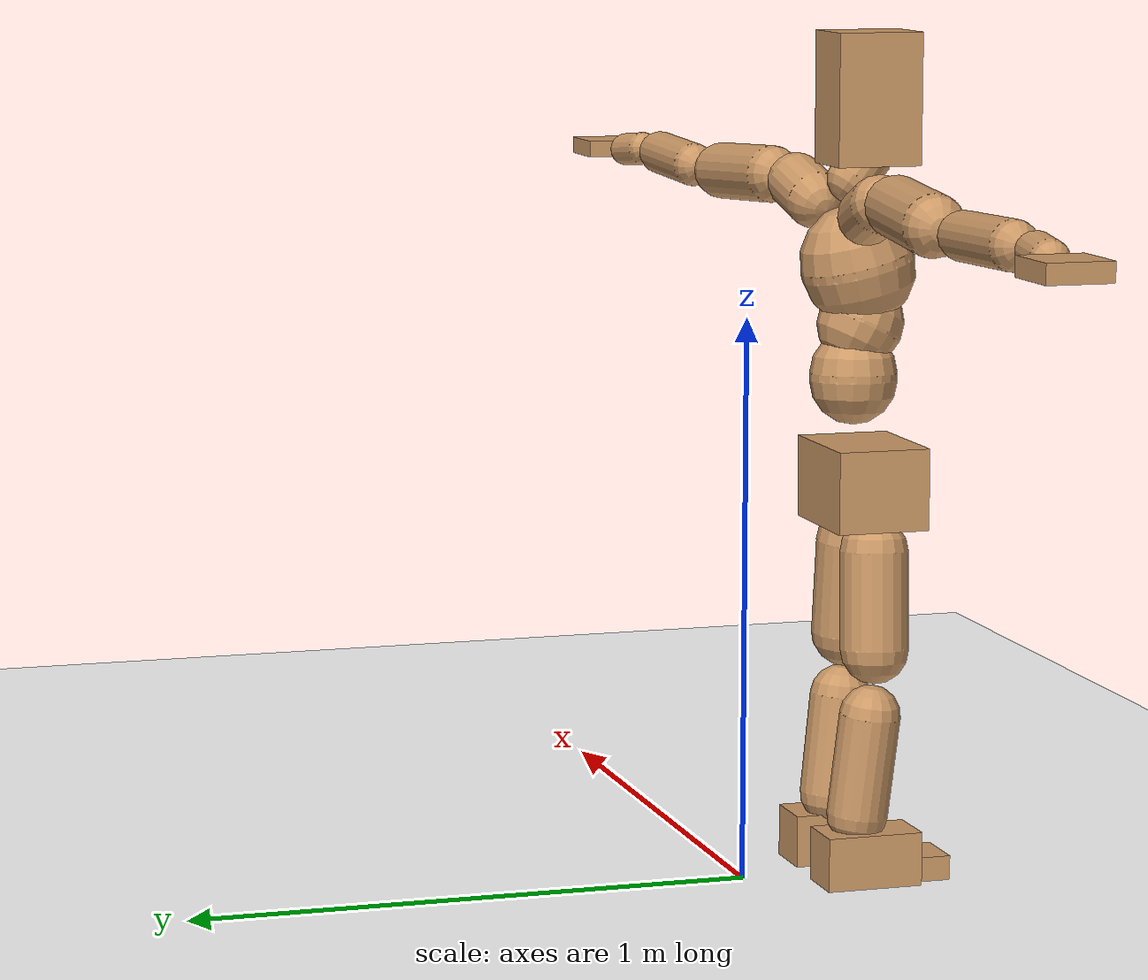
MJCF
<mujoco model="humanoid">
  <option integrator="implicitfast" />

  <visual>
    <global offwidth="1280" offheight="960" />
    <headlight active="1" ambient="0.34 0.34 0.34" diffuse="0.5 0.5 0.5" />
  </visual>

  <default>
    <joint damping="2" stiffness="2" armature="0.01" limited="true" solimplimit="0 .99 .01" />
    <geom condim="1" friction="0.7 0.005 0.0001" solimp=".99 .99 .003" solref="0.015 1" margin="0.001" rgba="0.8 0.6 .4 1" />
    <default class="smplcontact">
      <geom condim="3" friction="1. 0.005 0.0001" solref="0.015 1" solimp="0.98 0.98 0.001" priority="1" />
    </default>
    <default class="stiff_medium">
      <joint stiffness="10" />
    </default>
    <default class="stiff_medium_higher">
      <joint stiffness="50" />
    </default>
    <default class="stiff_high">
      <joint stiffness="100" />
    </default>
  </default>

  <asset>
    <texture type="skybox" builtin="gradient" rgb1="0.99 0.99 0.99" rgb2="0.608 0.828 0.892" width="100" />
    <texture builtin="flat" height="1278" mark="cross" markrgb="1 1 1" name="texgeom" random="0.01" rgb1="0.8 0.6 0.4" rgb2="0.8 0.6 0.4" type="cube" width="127" />
    <texture name="texplane" type="2d" builtin="checker" markrgb="1 1 1" rgb1="0.756 0.772 0.76" rgb2="0.6 0.6 0.6" width="100" height="100" />
    <material name="MatPlane" reflectance="0.5" texture="texplane" texrepeat="1 1" texuniform="true" />
    <material name="geom" texture="texgeom" texuniform="true" />
  </asset>

  <worldbody>
    <light name="tracking_light" pos="0 0 7" dir="0 0 -1" directional="true" cutoff="100" exponent="1" diffuse="1 1 1" specular="0.1 0.1 0.1" mode="trackcom" />
    <camera name="back" pos="0 3 2.4" xyaxes="-1 0 0 0 -1 2" mode="trackcom" />
    <camera name="side" pos="-3 0 2.4" xyaxes="0 -1 0 1 0 2" mode="trackcom" />
    <camera name="front_side" pos="-2.8 -2.8 0.8" xyaxes="0.5 -0.5 0 0.1 0.1 1" mode="trackcom" />
    <geom condim="3" name="floor" pos="0 0 0" rgba="1 1 1 1" size="100 100 .2" type="plane" material="MatPlane" />
    <body name="Pelvis" pos="-0.0018 -0.2233 0.714475" euler="90 0 0">
      <site name="Pelvis" size="0.01" />
      <freejoint name="Pelvis" />
      <geom type="box" pos="-0.0000 -0.0121 -0.0055" size="0.1069 0.0722 0.083" quat="1.0000 0.0000 0.0000 0.0000" density="3165.830099" name="Pelvis" />
      <body name="L_Hip" pos="0.052125 -0.06855 -0.0051">
        <joint name="L_Hip_x" type="hinge" pos="0 0 0" axis="1 0 0" stiffness="6.246094795918367" range="-160.0 22.92" class="stiff_medium" damping="8.291075045961078" armature="0.004891370984683405"/>
        <joint name="L_Hip_y" type="hinge" pos="0 0 0" axis="0 1 0" stiffness="6.283432346938776" range="-70.0 70.0" class="stiff_medium" damping="6.622206330553066" armature="0.006979245460609145"/>
        <joint name="L_Hip_z" type="hinge" pos="0 0 0" axis="0 0 1" stiffness="6.280236020408163" range="-28.65 90.0" class="stiff_medium" damping="5.540637852842338" armature="0.004888139190404855"/>
        <geom type="capsule" density="2040.816327" fromto="0.005175 -0.05625 -0.000675 0.02055 -0.22515 -0.0027" size="0.0615" name="L_Hip" />
        <body name="L_Knee" pos="0.025725 -0.2814 -0.003375">
          <joint name="L_Knee_x" type="hinge" pos="0 0 0" axis="1 0 0" range="-5.16 171.89" damping="4.629153389768343" armature="0.005182973512521496" stiffness="1.292034693877551"/>
          <joint name="L_Knee_y" type="hinge" pos="0 0 0" axis="0 1 0" range="-4.58 6.88" damping="5.469884734588186" armature="0.007381715461698131" stiffness="1.2666279591836735"/>
          <joint name="L_Knee_z" type="hinge" pos="0 0 0" axis="0 0 1" range="-6.88 4.58" damping="4.64167262787214" armature="0.005166231774225998" stiffness="1.3032422448979593"/>
          <geom type="capsule" density="1234.567901" fromto="-0.002025 -0.0597 -0.006525 -0.008175 -0.2388 -0.02625" size="0.0541" name="L_Knee" />
          <body name="L_Ankle" pos="-0.0102 -0.2985 -0.032775">
            <joint name="L_Ankle_x" type="hinge" pos="0 0 0" axis="1 0 0" range="-45.84 45.84" class="stiff_medium" damping="4.385268345779529" armature="0.007122436468331826" stiffness="7.5"/>
            <joint name="L_Ankle_y" type="hinge" pos="0 0 0" axis="0 1 0" range="-74.48 22.92" class="stiff_medium" damping="2.209050591087884" armature="0.00722948816886775" stiffness="7.5"/>
            <joint name="L_Ankle_z" type="hinge" pos="0 0 0" axis="0 0 1" range="-4.58 4.58" class="stiff_medium" damping="4.627293284407395" armature="0.007930312274045104" stiffness="7.5"/>
            <geom type="box" pos="0.017475 -0.017925 0.01815" size="0.0483 0.0464 0.085" quat="1.0000 0.0000 0.0000 0.0000" density="449.071558" name="L_Ankle" class="smplcontact" />
            <body name="L_Toe" pos="0.0198 -0.04185 0.089475">
              <joint name="L_Toe_x" type="hinge" pos="0 0 0" axis="1 0 0" range="-91.67 22.92" armature="0.008336677887503783" damping="1.5814560905226345" stiffness="1.5"/>
              <joint name="L_Toe_y" type="hinge" pos="0 0 0" axis="0 1 0" range="-4.58 4.58" armature="0.008828055290798253" damping="1.627395645575923" stiffness="1.5"/>
              <joint name="L_Toe_z" type="hinge" pos="0 0 0" axis="0 0 1" range="-4.58 4.58" armature="0.009821593951992494" damping="1.716530857747028" stiffness="1.5"/>
              <geom type="box" pos="-0.00225 0.004125 0.0186" size="0.0478 0.02 0.0496" quat="1.0000 0.0000 0.0000 0.0000" density="423.206892" name="L_Toe" class="smplcontact" />
            </body>
          </body>
        </body>
      </body>
      <body name="R_Hip" pos="-0.050775 -0.067875 -0.003225">
        <joint name="R_Hip_x" type="hinge" pos="0 0 0" axis="1 0 0" stiffness="6.246094795918367" range="-160.0 22.92" class="stiff_medium" damping="8.291075045961078" armature="0.004891370984683405"/>
        <joint name="R_Hip_y" type="hinge" pos="0 0 0" axis="0 1 0" stiffness="6.283432346938776" range="-70.0 70.0" class="stiff_medium" damping="6.622206330553066" armature="0.006979245460609145"/>
        <joint name="R_Hip_z" type="hinge" pos="0 0 0" axis="0 0 1" stiffness="6.280236020408163" range="-90.0 28.65" class="stiff_medium" damping="5.540637852842338" armature="0.004888139190404855"/>
        <geom type="capsule" density="2040.816327" fromto="-0.005775 -0.057375 -0.00135 -0.02295 -0.229575 -0.005325" size="0.0606" name="R_Hip" />
        <body name="R_Knee" pos="-0.028725 -0.28695 -0.006675">
          <joint name="R_Knee_x" type="hinge" pos="0 0 0" axis="1 0 0" range="-5.16 171.89" damping="4.629153389768343" armature="0.005182973512521496" stiffness="1.292034693877551"/>
          <joint name="R_Knee_y" type="hinge" pos="0 0 0" axis="0 1 0" range="-6.88 4.58" damping="5.469884734588186" armature="0.007381715461698131" stiffness="1.2666279591836735"/>
          <joint name="R_Knee_z" type="hinge" pos="0 0 0" axis="0 0 1" range="-4.58 6.88" damping="4.64167262787214" armature="0.005166231774225998" stiffness="1.3032422448979593"/>
          <geom type="capsule" density="1234.567901" fromto="0.0024 -0.059775 -0.006375 0.00945 -0.239025 -0.02535" size="0.0541" name="R_Knee" />
          <body name="R_Ankle" pos="0.01185 -0.2988 -0.031725">
            <joint name="R_Ankle_x" type="hinge" pos="0 0 0" axis="1 0 0" range="-45.84 45.84" class="stiff_medium" damping="4.385268345779529" armature="0.007122436468331826" stiffness="7.5"/>
            <joint name="R_Ankle_y" type="hinge" pos="0 0 0" axis="0 1 0" range="-22.92 74.48" class="stiff_medium" damping="2.209050591087884" armature="0.00722948816886775" stiffness="7.5"/>
            <joint name="R_Ankle_z" type="hinge" pos="0 0 0" axis="0 0 1" range="-4.58 4.58" class="stiff_medium" damping="4.627293284407395" armature="0.007930312274045104" stiffness="7.5"/>
            <geom type="box" pos="-0.0159 -0.01305 0.0192" size="0.0483 0.0478 0.0865" quat="1.0000 0.0000 0.0000 0.0000" density="434.700981" name="R_Ankle" class="smplcontact" />
            <body name="R_Toe" pos="-0.01905 -0.036075 0.092475">
              <joint name="R_Toe_x" type="hinge" pos="0 0 0" axis="1 0 0" range="-91.67 22.92" armature="0.008336677887503783" damping="1.5814560905226345" stiffness="1.5"/>
              <joint name="R_Toe_y" type="hinge" pos="0 0 0" axis="0 1 0" range="-4.58 4.58" armature="0.008828055290798253" damping="1.627395645575923" stiffness="1.5"/>
              <joint name="R_Toe_z" type="hinge" pos="0 0 0" axis="0 0 1" range="-4.58 4.58" armature="0.009821593951992494" damping="1.716530857747028" stiffness="1.5"/>
              <geom type="box" pos="0.00315 0.003375 0.017025" size="0.0479 0.0216 0.0493" quat="1.0000 0.0000 0.0000 0.0000" density="407.384095" name="R_Toe" class="smplcontact" />
            </body>
          </body>
        </body>
      </body>
      <body name="Torso" pos="-0.0025 0.109 -0.0267">
        <joint name="Torso_x" type="hinge" pos="0 0 0" axis="1 0 0" range="-25.78 57.3" class="stiff_medium" damping="17.816617842535415" armature="0.01220444282408803" stiffness="11.55979291666667"/>
        <joint name="Torso_y" type="hinge" pos="0 0 0" axis="0 1 0" range="-57.3 57.3" class="stiff_high" damping="32.66648617457636" armature="0.023482633249027433" stiffness="113.6051595744681"/>
        <joint name="Torso_z" type="hinge" pos="0 0 0" axis="0 0 1" range="-34.38 34.38" class="stiff_high" damping="26.532055594632826" armature="0.016035100718302126" stiffness="109.75141136363638"/>
        <geom type="capsule" density="2040.816327" fromto="0.0025 0.0608 0.0005 0.003 0.0743 0.0006" size="0.0769" name="Torso" />
        <body name="Spine" pos="0.0055 0.1352 0.0011">
          <joint name="Spine_x" type="hinge" pos="0 0 0" axis="1 0 0" stiffness="11.652306458333332" range="-25.78 57.3" class="stiff_medium" damping="18.346849955919502" armature="0.012838923235543203"/>
          <joint name="Spine_y" type="hinge" pos="0 0 0" axis="0 1 0" stiffness="12.490174523809525" range="-57.3 57.3" class="stiff_high" damping="13.727844217436887" armature="0.023575244397477886"/>
          <joint name="Spine_z" type="hinge" pos="0 0 0" axis="0 0 1" stiffness="24.140002666666668" range="-34.38 34.38" class="stiff_high" damping="18.060617405335822" armature="0.018767022520783622"/>
          <geom type="capsule" density="2040.816327" fromto="0.0007 0.0238 0.0114 0.0008 0.0291 0.014" size="0.0755" name="Spine" />
          <body name="Chest" pos="0.0015 0.0529 0.0254">
            <joint name="Chest_x" type="hinge" pos="0 0 0" axis="1 0 0" stiffness="12.52777088888889" range="-25.78 57.3" class="stiff_medium" damping="19.323420684641803" armature="0.013246821899117767"/>
            <joint name="Chest_y" type="hinge" pos="0 0 0" axis="0 1 0" stiffness="14.856075609756099" range="-57.3 57.3" class="stiff_high" damping="14.973397185345426" armature="0.02358069574104024"/>
            <joint name="Chest_z" type="hinge" pos="0 0 0" axis="0 0 1" stiffness="24.504841860465113" range="-34.38 34.38" class="stiff_high" damping="18.776413152497916" armature="0.01998208789833815"/>
            <geom type="capsule" density="2040.816327" fromto="-0.0009 0.0682 -0.0173 -0.001 0.0833 -0.0212" size="0.1002" name="Chest" />
            <body name="Neck" pos="-0.0028 0.2139 -0.0429">
              <joint name="Neck_x" type="hinge" pos="0 0 0" axis="1 0 0" range="-28.65 57.3" class="stiff_medium_higher" damping="10.000000000000004" armature="0.010000000000000009" stiffness="50.0"/>
              <joint name="Neck_y" type="hinge" pos="0 0 0" axis="0 1 0" range="-40.11 40.11" class="stiff_medium_higher" damping="10.0" armature="0.01" stiffness="50.0"/>
              <joint name="Neck_z" type="hinge" pos="0 0 0" axis="0 0 1" range="-40.11 40.11" class="stiff_medium_higher" damping="9.999999999999996" armature="0.009999999999999992" stiffness="50.0"/>
              <geom type="capsule" density="1000" fromto="0.001 0.013 0.0103 0.0041 0.052 0.0411" size="0.0436" name="Neck" />
              <body name="Head" pos="0.0052 0.065 0.0513">
                <joint name="Head_x" type="hinge" pos="0 0 0" axis="1 0 0" range="-28.65 57.3" class="stiff_medium_higher" damping="1.9999999999999967" armature="0.009999999999999967" stiffness="50.0"/>
                <joint name="Head_y" type="hinge" pos="0 0 0" axis="0 1 0" range="-40.11 40.11" class="stiff_medium_higher" damping="1.9999999999999998" armature="0.009999999999999998" stiffness="50.0"/>
                <joint name="Head_z" type="hinge" pos="0 0 0" axis="0 0 1" range="-40.11 40.11" class="stiff_medium_higher" damping="1.9999999999999964" armature="0.009999999999999966" stiffness="50.0"/>
                <geom type="box" pos="-0.0042 0.0876 -0.0116" size="0.0606 0.1154 0.076" quat="1.0000 0.0000 0.0000 0.0000" density="1018.069894" name="Head" />
                <geom type="capsule" name="nose" size="0.02 0.01" pos="0 0.07 0.05" quat="1 0 0 0" mass="0" contype="0" conaffinity="0" />
              </body>
            </body>
            <body name="L_Thorax" pos="0.11032 0.17038 -0.04774">
              <joint name="L_Thorax_x" type="hinge" pos="0 0 0" axis="1 0 0" range="-10.89 4.58" class="stiff_medium_higher" damping="36.24085805878993" armature="0.01885613863474434" stiffness="87.06712295918368"/>
              <joint name="L_Thorax_y" type="hinge" pos="0 0 0" axis="0 1 0" range="-28.65 17.19" class="stiff_medium_higher" damping="40.96620891880995" armature="0.023898132129905863" stiffness="87.78041020408163"/>
              <joint name="L_Thorax_z" type="hinge" pos="0 0 0" axis="0 0 1" range="-31.51 40.11" class="stiff_medium_higher" damping="40.96835729355361" armature="0.023902786052476355" stiffness="87.77252448979593"/>
              <geom type="capsule" density="1000" fromto="0.02548 0.00854 -0.00252 0.10192 0.03416 -0.00994" size="0.0521" name="L_Thorax" />
              <body name="L_Shoulder" pos="0.1274 0.0427 -0.01246">
                <joint name="L_Shoulder_x" type="hinge" pos="0 0 0" axis="1 0 0" range="-97.4 97.4" class="stiff_medium" damping="10.216467793124673" armature="0.01675097572082101" stiffness="17.30848"/>
                <joint name="L_Shoulder_y" type="hinge" pos="0 0 0" axis="0 1 0" range="-108.86 80.21" class="stiff_medium" damping="12.210584630805666" armature="0.023662310849895674" stiffness="17.503030918367347"/>
                <joint name="L_Shoulder_z" type="hinge" pos="0 0 0" axis="0 0 1" range="-97.4 85.94" class="stiff_medium" damping="12.207996623471661" armature="0.023667800947755637" stiffness="17.491553877551024"/>
                <geom type="capsule" density="1000" fromto="0.07266 -0.00364 -0.0077 0.29078 -0.01428 -0.0308" size="0.0517" name="L_Shoulder" />
                <body name="L_Elbow" pos="0.36344 -0.01792 -0.0385">
                  <joint name="L_Elbow_x" type="hinge" pos="0 0 0" axis="1 0 0" range="-17.19 4.58" damping="7.586581525572863" armature="0.013620348817447336" stiffness="3.380601775510204"/>
                  <joint name="L_Elbow_y" type="hinge" pos="0 0 0" axis="0 1 0" range="-180.0 17.19" damping="9.758671052618125" armature="0.022523674987219237" stiffness="3.382455510204082"/>
                  <joint name="L_Elbow_z" type="hinge" pos="0 0 0" axis="0 0 1" range="-100.84 4.58" damping="9.76033597904075" armature="0.022552387617329587" stiffness="3.3793019183673465"/>
                  <geom type="capsule" density="1000" fromto="0.06972 0.00252 -0.00028 0.27916 0.01008 -0.00126" size="0.0405" name="L_Elbow" />
                  <body name="L_Wrist" pos="0.34888 0.0126 -0.00168">
                    <joint name="L_Wrist_x" type="hinge" pos="0 0 0" axis="1 0 0" range="-180.0 22.92" armature="0.013168550139584014" damping="2.812193940526971" stiffness="3.002773530612245"/>
                    <joint name="L_Wrist_y" type="hinge" pos="0 0 0" axis="0 1 0" range="-17.19 17.19" armature="0.01914592614381611" damping="3.407656593319377" stiffness="3.0325311428571426"/>
                    <joint name="L_Wrist_z" type="hinge" pos="0 0 0" axis="0 0 1" range="-22.92 22.92" armature="0.019468640829170734" damping="3.4294485001747037" stiffness="3.0205285306122445"/>
                    <geom type="capsule" density="1000" fromto="0.02352 -0.00224 -0.0042 0.09408 -0.0091 -0.0168" size="0.0318" name="L_Wrist" class="smplcontact" />
                    <body name="L_Hand" pos="0.1176 -0.01148 -0.02086">
                      <joint name="L_Hand_x" type="hinge" pos="0 0 0" axis="1 0 0" range="-17.19 17.19" armature="0.01041823514099741" damping="2.4154112856734256" stiffness="2.8000000000000003"/>
                      <joint name="L_Hand_y" type="hinge" pos="0 0 0" axis="0 1 0" range="-51.57 51.57" armature="0.015057977012994246" damping="2.9038710589963834" stiffness="2.8000000000000003"/>
                      <joint name="L_Hand_z" type="hinge" pos="0 0 0" axis="0 0 1" range="-91.67 91.67" armature="0.016294763602145677" damping="3.020772685456749" stiffness="2.8000000000000003"/>
                      <geom type="box" pos="0.06902 0.0014 -0.00812" size="0.0585 0.0158 0.0538" quat="1.0000 0.0000 0.0000 0.0000" density="400.552564" name="L_Hand" class="smplcontact" />
                    </body>
                  </body>
                </body>
              </body>
            </body>
            <body name="R_Thorax" pos="-0.11452 0.16632 -0.05404">
              <joint name="R_Thorax_x" type="hinge" pos="0 0 0" axis="1 0 0" range="-10.89 4.58" class="stiff_medium_higher" damping="36.24085805878993" armature="0.01885613863474434" stiffness="87.06712295918368"/>
              <joint name="R_Thorax_y" type="hinge" pos="0 0 0" axis="0 1 0" range="-17.19 28.65" class="stiff_medium_higher" damping="40.96620891880995" armature="0.023898132129905863" stiffness="87.78041020408163"/>
              <joint name="R_Thorax_z" type="hinge" pos="0 0 0" axis="0 0 1" range="-40.11 31.51" class="stiff_medium_higher" damping="40.96835729355361" armature="0.023902786052476355" stiffness="87.77252448979593"/>
              <geom type="capsule" density="1000" fromto="-0.02688 0.0091 -0.00252 -0.10752 0.0364 -0.01022" size="0.0511" name="R_Thorax" />
              <body name="R_Shoulder" pos="-0.1344 0.04564 -0.01274">
                <joint name="R_Shoulder_x" type="hinge" pos="0 0 0" axis="1 0 0" range="-97.4 97.4" class="stiff_medium" damping="10.216467793124673" armature="0.01675097572082101" stiffness="17.30848"/>
                <joint name="R_Shoulder_y" type="hinge" pos="0 0 0" axis="0 1 0" range="-80.21 108.86" class="stiff_medium" damping="12.210584630805666" armature="0.023662310849895674" stiffness="17.503030918367347"/>
                <joint name="R_Shoulder_z" type="hinge" pos="0 0 0" axis="0 0 1" range="-85.94 97.4" class="stiff_medium" damping="12.207996623471661" armature="0.023667800947755637" stiffness="17.491553877551024"/>
                <geom type="capsule" density="1000" fromto="-0.07098 -0.00378 -0.00602 -0.2842 -0.01498 -0.02394" size="0.0531" name="R_Shoulder" />
                <body name="R_Elbow" pos="-0.35518 -0.01862 -0.02996">
                  <joint name="R_Elbow_x" type="hinge" pos="0 0 0" axis="1 0 0" range="-17.19 4.58" damping="7.586581525572863" armature="0.013620348817447336" stiffness="3.380601775510204"/>
                  <joint name="R_Elbow_y" type="hinge" pos="0 0 0" axis="0 1 0" range="-17.19 180.0" damping="9.758671052618125" armature="0.022523674987219237" stiffness="3.382455510204082"/>
                  <joint name="R_Elbow_z" type="hinge" pos="0 0 0" axis="0 0 1" range="-4.58 100.84" damping="9.76033597904075" armature="0.022552387617329587" stiffness="3.3793019183673465"/>
                  <geom type="capsule" density="1000" fromto="-0.07154 0.00224 -0.00154 -0.28588 0.00868 -0.00616" size="0.0408" name="R_Elbow" />
                  <body name="R_Wrist" pos="-0.35742 0.01092 -0.00784">
                    <joint name="R_Wrist_x" type="hinge" pos="0 0 0" axis="1 0 0" range="-180.0 22.92" armature="0.013168550139584014" damping="2.812193940526971" stiffness="3.002773530612245"/>
                    <joint name="R_Wrist_y" type="hinge" pos="0 0 0" axis="0 1 0" range="-17.19 17.19" armature="0.01914592614381611" damping="3.407656593319377" stiffness="3.0325311428571426"/>
                    <joint name="R_Wrist_z" type="hinge" pos="0 0 0" axis="0 0 1" range="-22.92 22.92" armature="0.019468640829170734" damping="3.4294485001747037" stiffness="3.0205285306122445"/>
                    <geom type="capsule" density="1000" fromto="-0.02366 -0.00168 -0.00294 -0.09478 -0.00686 -0.01162" size="0.0326" name="R_Wrist" class="smplcontact" />
                    <body name="R_Hand" pos="-0.11844 -0.00854 -0.01442">
                      <joint name="R_Hand_x" type="hinge" pos="0 0 0" axis="1 0 0" range="-17.19 17.19" armature="0.01041823514099741" damping="2.4154112856734256" stiffness="2.8000000000000003"/>
                      <joint name="R_Hand_y" type="hinge" pos="0 0 0" axis="0 1 0" range="-51.57 51.57" armature="0.015057977012994246" damping="2.9038710589963834" stiffness="2.8000000000000003"/>
                      <joint name="R_Hand_z" type="hinge" pos="0 0 0" axis="0 0 1" range="-91.67 91.67" armature="0.016294763602145677" damping="3.020772685456749" stiffness="2.8000000000000003"/>
                      <geom type="box" pos="-0.06468 -0.00126 -0.01106" size="0.0569 0.0164 0.0546" quat="1.0000 0.0000 0.0000 0.0000" density="403.679611" name="R_Hand" class="smplcontact" />
                    </body>
                  </body>
                </body>
              </body>
            </body>
          </body>
        </body>
      </body>
    </body>
  </worldbody>
  <actuator>
    <general name="L_Hip_x" joint="L_Hip_x" biastype="affine" gainprm="179.46908180691764" biasprm="-134.4938865848036 -112.42970632653059 -1.1054766727948104" ctrllimited="true" ctrlrange="-1 1" forcerange="-224.85941265306118 224.85941265306118" />
    <general name="L_Hip_y" joint="L_Hip_y" biastype="affine" gainprm="138.1798943032993" biasprm="0.0 -113.10178224489796 -1.3244412661106133" ctrllimited="true" ctrlrange="-1 1" forcerange="-226.20356448979592 226.20356448979592" />
    <general name="L_Hip_z" joint="L_Hip_z" biastype="affine" gainprm="117.04788889139031" biasprm="60.52160120932823 -113.04424836734694 -1.1081275705684677" ctrllimited="true" ctrlrange="-1 1" forcerange="-226.08849673469388 226.08849673469388" />
    <general name="L_Knee_x" joint="L_Knee_x" biastype="affine" gainprm="179.66355466802756" biasprm="169.1912141756579 -116.2831224489796 -1.1572883474420856" ctrllimited="true" ctrlrange="-1 1" forcerange="-232.5662448979592 232.5662448979592" />
    <general name="L_Knee_y" joint="L_Knee_y" biastype="affine" gainprm="11.400491346869197" biasprm="2.2880567275566452 -113.99651632653062 -1.3674711836470466" ctrllimited="true" ctrlrange="-1 1" forcerange="-227.99303265306125 227.99303265306125" />
    <general name="L_Knee_z" joint="L_Knee_z" biastype="affine" gainprm="11.730044191831292" biasprm="-2.3541973508910967 -117.29180204081634 -1.160418156968035" ctrllimited="true" ctrlrange="-1 1" forcerange="-234.58360408163267 234.58360408163267" />
    <general name="L_Ankle_x" joint="L_Ankle_x" biastype="affine" gainprm="54.00397771520855" biasprm="0.0 -67.5 -1.461756115259843" ctrllimited="true" ctrlrange="-1 1" forcerange="-135.0 135.0" />
    <general name="L_Ankle_y" joint="L_Ankle_y" biastype="affine" gainprm="57.37333583618361" biasprm="-30.371346978579332 -67.5 -1.4727003940585894" ctrllimited="true" ctrlrange="-1 1" forcerange="-135.0 135.0" />
    <general name="L_Ankle_z" joint="L_Ankle_z" biastype="affine" gainprm="5.395685382540469" biasprm="0.0 -67.5 -1.542431094802465" ctrllimited="true" ctrlrange="-1 1" forcerange="-135.0 135.0" />
    <general name="L_Toe_x" joint="L_Toe_x" biastype="affine" gainprm="53.999265326228155" biasprm="-32.39767424014474 -54.0 -0.6325824362090539" ctrllimited="true" ctrlrange="-1 1" forcerange="-108.0 108.0" />
    <general name="L_Toe_y" joint="L_Toe_y" biastype="affine" gainprm="4.3165483060323755" biasprm="0.0 -54.0 -0.6509582582303692" ctrllimited="true" ctrlrange="-1 1" forcerange="-108.0 108.0" />
    <general name="L_Toe_z" joint="L_Toe_z" biastype="affine" gainprm="4.3165483060323755" biasprm="0.0 -54.0 -0.6866123430988113" ctrllimited="true" ctrlrange="-1 1" forcerange="-108.0 108.0" />
    <general name="R_Hip_x" joint="R_Hip_x" biastype="affine" gainprm="179.46908180691764" biasprm="-134.4938865848036 -112.42970632653059 -1.1054766727948104" ctrllimited="true" ctrlrange="-1 1" forcerange="-224.85941265306118 224.85941265306118" />
    <general name="R_Hip_y" joint="R_Hip_y" biastype="affine" gainprm="138.1798943032993" biasprm="0.0 -113.10178224489796 -1.3244412661106133" ctrllimited="true" ctrlrange="-1 1" forcerange="-226.20356448979592 226.20356448979592" />
    <general name="R_Hip_z" joint="R_Hip_z" biastype="affine" gainprm="117.04788889139031" biasprm="-60.52160120932823 -113.04424836734694 -1.1081275705684677" ctrllimited="true" ctrlrange="-1 1" forcerange="-226.08849673469388 226.08849673469388" />
    <general name="R_Knee_x" joint="R_Knee_x" biastype="affine" gainprm="179.66355466802756" biasprm="169.1912141756579 -116.2831224489796 -1.1572883474420856" ctrllimited="true" ctrlrange="-1 1" forcerange="-232.5662448979592 232.5662448979592" />
    <general name="R_Knee_y" joint="R_Knee_y" biastype="affine" gainprm="11.400491346869197" biasprm="-2.2880567275566452 -113.99651632653062 -1.3674711836470466" ctrllimited="true" ctrlrange="-1 1" forcerange="-227.99303265306125 227.99303265306125" />
    <general name="R_Knee_z" joint="R_Knee_z" biastype="affine" gainprm="11.730044191831292" biasprm="2.3541973508910967 -117.29180204081634 -1.160418156968035" ctrllimited="true" ctrlrange="-1 1" forcerange="-234.58360408163267 234.58360408163267" />
    <general name="R_Ankle_x" joint="R_Ankle_x" biastype="affine" gainprm="54.00397771520855" biasprm="0.0 -67.5 -1.461756115259843" ctrllimited="true" ctrlrange="-1 1" forcerange="-135.0 135.0" />
    <general name="R_Ankle_y" joint="R_Ankle_y" biastype="affine" gainprm="57.37333583618361" biasprm="30.371346978579332 -67.5 -1.4727003940585894" ctrllimited="true" ctrlrange="-1 1" forcerange="-135.0 135.0" />
    <general name="R_Ankle_z" joint="R_Ankle_z" biastype="affine" gainprm="5.395685382540469" biasprm="0.0 -67.5 -1.542431094802465" ctrllimited="true" ctrlrange="-1 1" forcerange="-135.0 135.0" />
    <general name="R_Toe_x" joint="R_Toe_x" biastype="affine" gainprm="53.999265326228155" biasprm="-32.39767424014474 -54.0 -0.6325824362090539" ctrllimited="true" ctrlrange="-1 1" forcerange="-108.0 108.0" />
    <general name="R_Toe_y" joint="R_Toe_y" biastype="affine" gainprm="4.3165483060323755" biasprm="0.0 -54.0 -0.6509582582303692" ctrllimited="true" ctrlrange="-1 1" forcerange="-108.0 108.0" />
    <general name="R_Toe_z" joint="R_Toe_z" biastype="affine" gainprm="4.3165483060323755" biasprm="0.0 -54.0 -0.6866123430988113" ctrllimited="true" ctrlrange="-1 1" forcerange="-108.0 108.0" />
    <general name="Torso_x" joint="Torso_x" biastype="affine" gainprm="201.14310764492842" biasprm="76.31235860577928 -277.43503000000004 -4.751098091342778" ctrllimited="true" ctrlrange="-1 1" forcerange="-416.1525450000001 416.1525450000001" />
    <general name="Torso_y" joint="Torso_y" biastype="affine" gainprm="272.67246693299046" biasprm="0.0 -272.65238297872344 -6.533297234915272" ctrllimited="true" ctrlrange="-1 1" forcerange="-408.9785744680852 408.9785744680852" />
    <general name="Torso_z" joint="Torso_z" biastype="affine" gainprm="158.05367395985348" biasprm="0.0 -263.4033872727273 -5.306411118926565" ctrllimited="true" ctrlrange="-1 1" forcerange="-395.10508090909093 395.10508090909093" />
    <general name="Spine_x" joint="Spine_x" biastype="affine" gainprm="202.75286496534218" biasprm="76.9230898375973 -279.655355 -4.892493321578534" ctrllimited="true" ctrlrange="-1 1" forcerange="-419.4830325 419.4830325" />
    <general name="Spine_y" joint="Spine_y" biastype="affine" gainprm="299.7862696190556" biasprm="0.0 -299.7641885714286 -6.863922108718444" ctrllimited="true" ctrlrange="-1 1" forcerange="-449.6462828571429 449.6462828571429" />
    <general name="Spine_z" joint="Spine_z" biastype="affine" gainprm="173.82082214076556" biasprm="0.0 -289.680032 -6.020205801778608" ctrllimited="true" ctrlrange="-1 1" forcerange="-434.520048 434.520048" />
    <general name="Chest_x" joint="Chest_x" biastype="affine" gainprm="217.98615136277013" biasprm="82.70249748380492 -300.6665013333334 -5.152912182571147" ctrllimited="true" ctrlrange="-1 1" forcerange="-450.999752 450.999752" />
    <general name="Chest_y" joint="Chest_y" biastype="affine" gainprm="356.57207829543177" biasprm="0.0 -356.5458146341464 -7.486698592672713" ctrllimited="true" ctrlrange="-1 1" forcerange="-534.8187219512196 534.8187219512196" />
    <general name="Chest_z" joint="Chest_z" biastype="affine" gainprm="176.44785783296902" biasprm="0.0 -294.0581023255814 -6.258804384165972" ctrllimited="true" ctrlrange="-1 1" forcerange="-441.08715348837205 441.08715348837205" />
    <general name="Neck_x" joint="Neck_x" biastype="affine" gainprm="27.00198885760427" biasprm="9.000662952534757 -36.0 -0.8000000000000004" ctrllimited="true" ctrlrange="-1 1" forcerange="-72.0 72.0" />
    <general name="Neck_y" joint="Neck_y" biastype="affine" gainprm="25.20185626709732" biasprm="0.0 -36.0 -0.8" ctrllimited="true" ctrlrange="-1 1" forcerange="-72.0 72.0" />
    <general name="Neck_z" joint="Neck_z" biastype="affine" gainprm="25.20185626709732" biasprm="0.0 -36.0 -0.7999999999999997" ctrllimited="true" ctrlrange="-1 1" forcerange="-72.0 72.0" />
    <general name="Head_x" joint="Head_x" biastype="affine" gainprm="18.001325905069514" biasprm="6.000441968356505 -24.0 -0.7999999999999987" ctrllimited="true" ctrlrange="-1 1" forcerange="-48.0 48.0" />
    <general name="Head_y" joint="Head_y" biastype="affine" gainprm="16.801237511398213" biasprm="0.0 -24.0 -0.7999999999999999" ctrllimited="true" ctrlrange="-1 1" forcerange="-48.0 48.0" />
    <general name="Head_z" joint="Head_z" biastype="affine" gainprm="16.801237511398213" biasprm="0.0 -24.0 -0.7999999999999986" ctrllimited="true" ctrlrange="-1 1" forcerange="-48.0 48.0" />
    <general name="L_Thorax_x" joint="L_Thorax_x" biastype="affine" gainprm="28.21000227853141" biasprm="-11.506471517616887 -208.96109510204082 -2.899268644703195" ctrllimited="true" ctrlrange="-1 1" forcerange="-417.92219020408163 417.92219020408163" />
    <general name="L_Thorax_y" joint="L_Thorax_y" biastype="affine" gainprm="84.27540118209936" biasprm="-21.06885029552484 -210.6729844897959 -3.277296713504796" ctrllimited="true" ctrlrange="-1 1" forcerange="-421.3459689795918 421.3459689795918" />
    <general name="L_Thorax_z" joint="L_Thorax_z" biastype="affine" gainprm="131.65929338702185" biasprm="15.809409705785923 -210.6540587755102 -3.2774685834842887" ctrllimited="true" ctrlrange="-1 1" forcerange="-421.3081175510204 421.3081175510204" />
    <general name="L_Shoulder_x" joint="L_Shoulder_x" biastype="affine" gainprm="141.23310021032776" biasprm="0.0 -83.080704 -2.724391411499913" ctrllimited="true" ctrlrange="-1 1" forcerange="-166.161408 166.161408" />
    <general name="L_Shoulder_y" joint="L_Shoulder_y" biastype="affine" gainprm="138.61955280584408" biasprm="-21.005184259202586 -84.01454840816328 -3.256155901548178" ctrllimited="true" ctrlrange="-1 1" forcerange="-168.02909681632656 168.02909681632656" />
    <general name="L_Shoulder_z" joint="L_Shoulder_z" biastype="affine" gainprm="134.33037540273168" biasprm="-8.396564318290107 -83.9594586122449 -3.25546576625911" ctrllimited="true" ctrlrange="-1 1" forcerange="-167.9189172244898 167.9189172244898" />
    <general name="L_Elbow_x" joint="L_Elbow_x" biastype="affine" gainprm="23.120771250680953" biasprm="-13.39241733904855 -121.70166391836734 -1.2138530440916582" ctrllimited="true" ctrlrange="-1 1" forcerange="-243.4033278367347 243.4033278367347" />
    <general name="L_Elbow_y" joint="L_Elbow_y" biastype="affine" gainprm="209.53995807470082" biasprm="-173.0067476755517 -121.76839836734695 -1.5613873684189001" ctrllimited="true" ctrlrange="-1 1" forcerange="-243.5367967346939 243.5367967346939" />
    <general name="L_Elbow_z" joint="L_Elbow_z" biastype="affine" gainprm="111.91798423395207" biasprm="-102.19337091975173 -121.65486906122447 -1.56165375664652" ctrllimited="true" ctrlrange="-1 1" forcerange="-243.30973812244895 243.30973812244895" />
    <general name="L_Wrist_x" joint="L_Wrist_x" biastype="affine" gainprm="31.904067455407095" biasprm="-24.696880129584795 -18.01664118367347 -1.1248775762107885" ctrllimited="true" ctrlrange="-1 1" forcerange="-36.03328236734694 36.03328236734694" />
    <general name="L_Wrist_y" joint="L_Wrist_y" biastype="affine" gainprm="5.458958141984436" biasprm="0.0 -18.195186857142858 -1.3630626373277508" ctrllimited="true" ctrlrange="-1 1" forcerange="-36.390373714285715 36.390373714285715" />
    <general name="L_Wrist_z" joint="L_Wrist_z" biastype="affine" gainprm="7.249802464681568" biasprm="0.0 -18.123171183673467 -1.3717794000698815" ctrllimited="true" ctrlrange="-1 1" forcerange="-36.246342367346934 36.246342367346934" />
    <general name="L_Hand_x" joint="L_Hand_x" biastype="affine" gainprm="5.040371253419465" biasprm="0.0 -16.8 -0.9661645142693702" ctrllimited="true" ctrlrange="-1 1" forcerange="-33.6 33.6" />
    <general name="L_Hand_y" joint="L_Hand_y" biastype="affine" gainprm="15.121113760258392" biasprm="0.0 -16.8 -1.1615484235985534" ctrllimited="true" ctrlrange="-1 1" forcerange="-33.6 33.6" />
    <general name="L_Hand_z" joint="L_Hand_z" biastype="affine" gainprm="26.879047865093792" biasprm="0.0 -16.8 -1.2083090741826998" ctrllimited="true" ctrlrange="-1 1" forcerange="-33.6 33.6" />
    <general name="R_Thorax_x" joint="R_Thorax_x" biastype="affine" gainprm="28.21000227853141" biasprm="-11.506471517616887 -208.96109510204082 -2.899268644703195" ctrllimited="true" ctrlrange="-1 1" forcerange="-417.92219020408163 417.92219020408163" />
    <general name="R_Thorax_y" joint="R_Thorax_y" biastype="affine" gainprm="84.27540118209936" biasprm="21.068850295524825 -210.6729844897959 -3.277296713504796" ctrllimited="true" ctrlrange="-1 1" forcerange="-421.3459689795918 421.3459689795918" />
    <general name="R_Thorax_z" joint="R_Thorax_z" biastype="affine" gainprm="131.65929338702185" biasprm="-15.809409705785923 -210.6540587755102 -3.2774685834842887" ctrllimited="true" ctrlrange="-1 1" forcerange="-421.3081175510204 421.3081175510204" />
    <general name="R_Shoulder_x" joint="R_Shoulder_x" biastype="affine" gainprm="141.23310021032776" biasprm="0.0 -83.080704 -2.724391411499913" ctrllimited="true" ctrlrange="-1 1" forcerange="-166.161408 166.161408" />
    <general name="R_Shoulder_y" joint="R_Shoulder_y" biastype="affine" gainprm="138.61955280584408" biasprm="21.005184259202586 -84.01454840816328 -3.256155901548178" ctrllimited="true" ctrlrange="-1 1" forcerange="-168.02909681632656 168.02909681632656" />
    <general name="R_Shoulder_z" joint="R_Shoulder_z" biastype="affine" gainprm="134.33037540273168" biasprm="8.396564318290089 -83.9594586122449 -3.25546576625911" ctrllimited="true" ctrlrange="-1 1" forcerange="-167.9189172244898 167.9189172244898" />
    <general name="R_Elbow_x" joint="R_Elbow_x" biastype="affine" gainprm="23.120771250680953" biasprm="-13.39241733904855 -121.70166391836734 -1.2138530440916582" ctrllimited="true" ctrlrange="-1 1" forcerange="-243.4033278367347 243.4033278367347" />
    <general name="R_Elbow_y" joint="R_Elbow_y" biastype="affine" gainprm="209.53995807470082" biasprm="173.0067476755517 -121.76839836734695 -1.5613873684189001" ctrllimited="true" ctrlrange="-1 1" forcerange="-243.5367967346939 243.5367967346939" />
    <general name="R_Elbow_z" joint="R_Elbow_z" biastype="affine" gainprm="111.91798423395207" biasprm="102.19337091975173 -121.65486906122447 -1.56165375664652" ctrllimited="true" ctrlrange="-1 1" forcerange="-243.30973812244895 243.30973812244895" />
    <general name="R_Wrist_x" joint="R_Wrist_x" biastype="affine" gainprm="31.904067455407095" biasprm="-24.696880129584795 -18.01664118367347 -1.1248775762107885" ctrllimited="true" ctrlrange="-1 1" forcerange="-36.03328236734694 36.03328236734694" />
    <general name="R_Wrist_y" joint="R_Wrist_y" biastype="affine" gainprm="5.458958141984436" biasprm="0.0 -18.195186857142858 -1.3630626373277508" ctrllimited="true" ctrlrange="-1 1" forcerange="-36.390373714285715 36.390373714285715" />
    <general name="R_Wrist_z" joint="R_Wrist_z" biastype="affine" gainprm="7.249802464681568" biasprm="0.0 -18.123171183673467 -1.3717794000698815" ctrllimited="true" ctrlrange="-1 1" forcerange="-36.246342367346934 36.246342367346934" />
    <general name="R_Hand_x" joint="R_Hand_x" biastype="affine" gainprm="5.040371253419465" biasprm="0.0 -16.8 -0.9661645142693702" ctrllimited="true" ctrlrange="-1 1" forcerange="-33.6 33.6" />
    <general name="R_Hand_y" joint="R_Hand_y" biastype="affine" gainprm="15.121113760258392" biasprm="0.0 -16.8 -1.1615484235985534" ctrllimited="true" ctrlrange="-1 1" forcerange="-33.6 33.6" />
    <general name="R_Hand_z" joint="R_Hand_z" biastype="affine" gainprm="26.879047865093792" biasprm="0.0 -16.8 -1.2083090741826998" ctrllimited="true" ctrlrange="-1 1" forcerange="-33.6 33.6" />
  </actuator>
  <contact>
    <exclude body1="Torso" body2="Chest" />
    <exclude body1="Head" body2="Chest" />
    <exclude body1="R_Knee" body2="R_Toe" />
    <exclude body1="R_Knee" body2="L_Ankle" />
    <exclude body1="R_Knee" body2="L_Toe" />
    <exclude body1="L_Knee" body2="L_Toe" />
    <exclude body1="L_Knee" body2="R_Ankle" />
    <exclude body1="L_Knee" body2="R_Toe" />
    <exclude body1="L_Shoulder" body2="Chest" />
    <exclude body1="R_Shoulder" body2="Chest" />
  </contact>
  <sensor>
    <framelinvel name="sensor_Pelvis_framelinvel" objtype="xbody" objname="Pelvis" />
    <framelinvel name="sensor_L_Hip_framelinvel" objtype="xbody" objname="L_Hip" />
    <framelinvel name="sensor_L_Knee_framelinvel" objtype="xbody" objname="L_Knee" />
    <framelinvel name="sensor_L_Ankle_framelinvel" objtype="xbody" objname="L_Ankle" />
    <framelinvel name="sensor_L_Toe_framelinvel" objtype="xbody" objname="L_Toe" />
    <framelinvel name="sensor_R_Hip_framelinvel" objtype="xbody" objname="R_Hip" />
    <framelinvel name="sensor_R_Knee_framelinvel" objtype="xbody" objname="R_Knee" />
    <framelinvel name="sensor_R_Ankle_framelinvel" objtype="xbody" objname="R_Ankle" />
    <framelinvel name="sensor_R_Toe_framelinvel" objtype="xbody" objname="R_Toe" />
    <framelinvel name="sensor_Torso_framelinvel" objtype="xbody" objname="Torso" />
    <framelinvel name="sensor_Spine_framelinvel" objtype="xbody" objname="Spine" />
    <framelinvel name="sensor_Chest_framelinvel" objtype="xbody" objname="Chest" />
    <framelinvel name="sensor_Neck_framelinvel" objtype="xbody" objname="Neck" />
    <framelinvel name="sensor_Head_framelinvel" objtype="xbody" objname="Head" />
    <framelinvel name="sensor_L_Thorax_framelinvel" objtype="xbody" objname="L_Thorax" />
    <framelinvel name="sensor_L_Shoulder_framelinvel" objtype="xbody" objname="L_Shoulder" />
    <framelinvel name="sensor_L_Elbow_framelinvel" objtype="xbody" objname="L_Elbow" />
    <framelinvel name="sensor_L_Wrist_framelinvel" objtype="xbody" objname="L_Wrist" />
    <framelinvel name="sensor_L_Hand_framelinvel" objtype="xbody" objname="L_Hand" />
    <framelinvel name="sensor_R_Thorax_framelinvel" objtype="xbody" objname="R_Thorax" />
    <framelinvel name="sensor_R_Shoulder_framelinvel" objtype="xbody" objname="R_Shoulder" />
    <framelinvel name="sensor_R_Elbow_framelinvel" objtype="xbody" objname="R_Elbow" />
    <framelinvel name="sensor_R_Wrist_framelinvel" objtype="xbody" objname="R_Wrist" />
    <framelinvel name="sensor_R_Hand_framelinvel" objtype="xbody" objname="R_Hand" />
    <frameangvel name="sensor_Pelvis_frameangvel" objtype="xbody" objname="Pelvis" />
    <frameangvel name="sensor_L_Hip_frameangvel" objtype="xbody" objname="L_Hip" />
    <frameangvel name="sensor_L_Knee_frameangvel" objtype="xbody" objname="L_Knee" />
    <frameangvel name="sensor_L_Ankle_frameangvel" objtype="xbody" objname="L_Ankle" />
    <frameangvel name="sensor_L_Toe_frameangvel" objtype="xbody" objname="L_Toe" />
    <frameangvel name="sensor_R_Hip_frameangvel" objtype="xbody" objname="R_Hip" />
    <frameangvel name="sensor_R_Knee_frameangvel" objtype="xbody" objname="R_Knee" />
    <frameangvel name="sensor_R_Ankle_frameangvel" objtype="xbody" objname="R_Ankle" />
    <frameangvel name="sensor_R_Toe_frameangvel" objtype="xbody" objname="R_Toe" />
    <frameangvel name="sensor_Torso_frameangvel" objtype="xbody" objname="Torso" />
    <frameangvel name="sensor_Spine_frameangvel" objtype="xbody" objname="Spine" />
    <frameangvel name="sensor_Chest_frameangvel" objtype="xbody" objname="Chest" />
    <frameangvel name="sensor_Neck_frameangvel" objtype="xbody" objname="Neck" />
    <frameangvel name="sensor_Head_frameangvel" objtype="xbody" objname="Head" />
    <frameangvel name="sensor_L_Thorax_frameangvel" objtype="xbody" objname="L_Thorax" />
    <frameangvel name="sensor_L_Shoulder_frameangvel" objtype="xbody" objname="L_Shoulder" />
    <frameangvel name="sensor_L_Elbow_frameangvel" objtype="xbody" objname="L_Elbow" />
    <frameangvel name="sensor_L_Wrist_frameangvel" objtype="xbody" objname="L_Wrist" />
    <frameangvel name="sensor_L_Hand_frameangvel" objtype="xbody" objname="L_Hand" />
    <frameangvel name="sensor_R_Thorax_frameangvel" objtype="xbody" objname="R_Thorax" />
    <frameangvel name="sensor_R_Shoulder_frameangvel" objtype="xbody" objname="R_Shoulder" />
    <frameangvel name="sensor_R_Elbow_frameangvel" objtype="xbody" objname="R_Elbow" />
    <frameangvel name="sensor_R_Wrist_frameangvel" objtype="xbody" objname="R_Wrist" />
    <frameangvel name="sensor_R_Hand_frameangvel" objtype="xbody" objname="R_Hand" />
    <subtreelinvel name="Chest_subtreelinvel" body="Chest" />
    <gyro name="Pelvis_gyro" site="Pelvis" />
  </sensor>
</mujoco>
